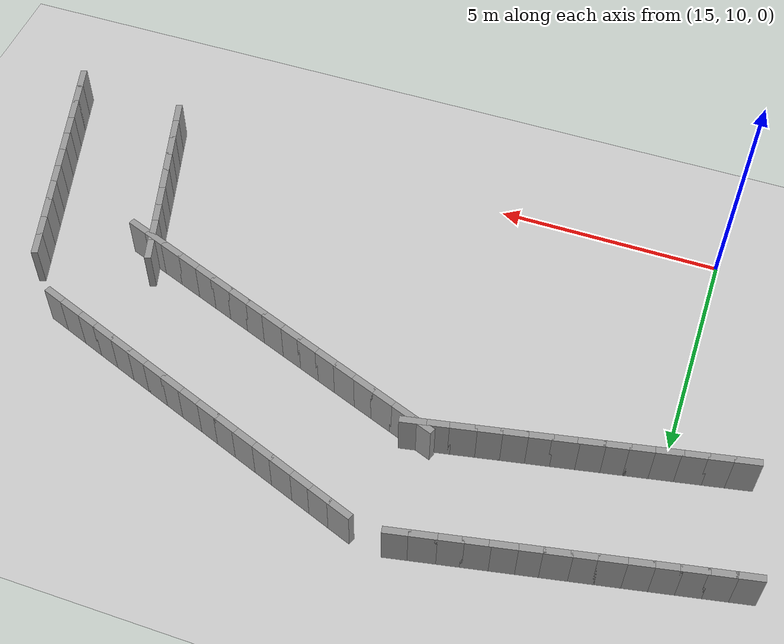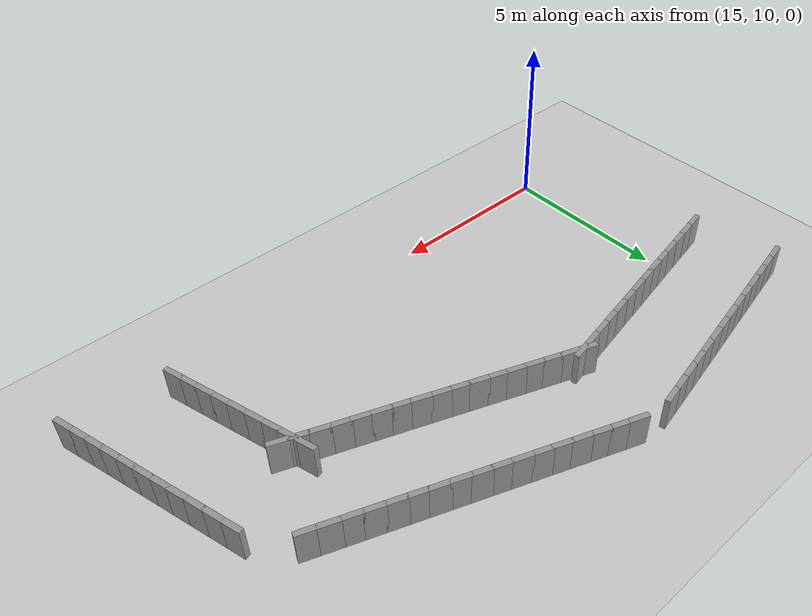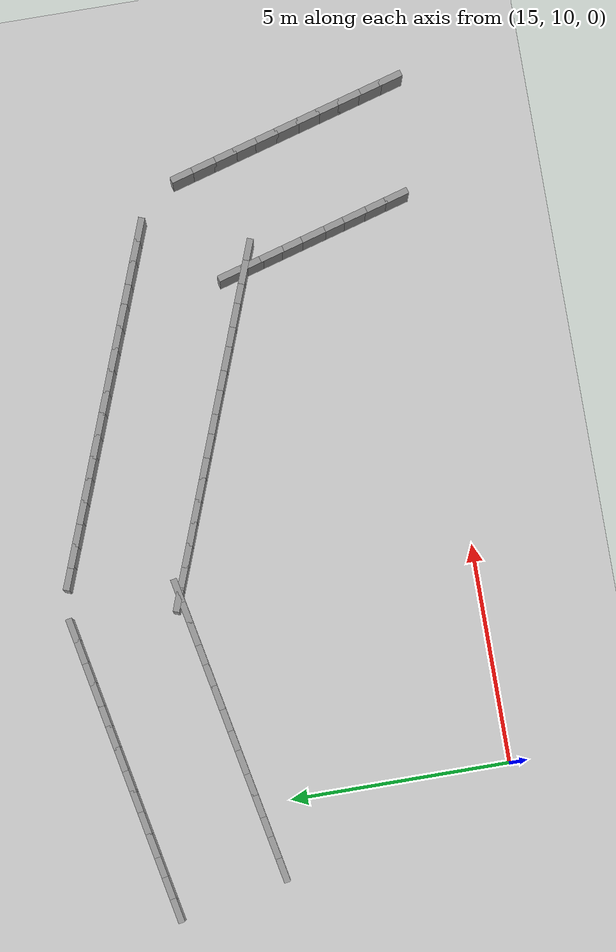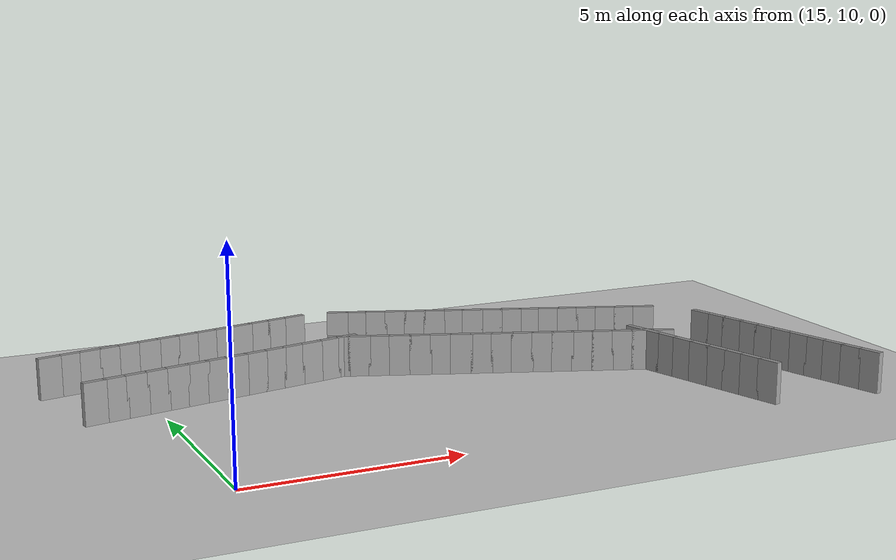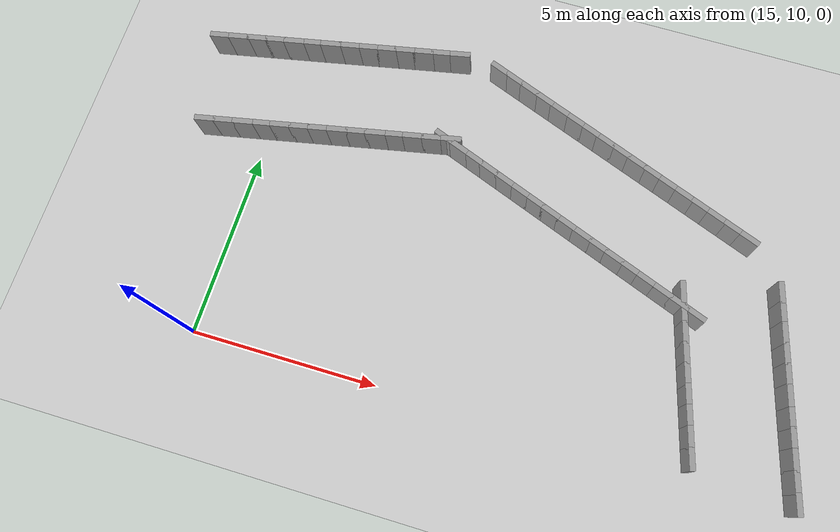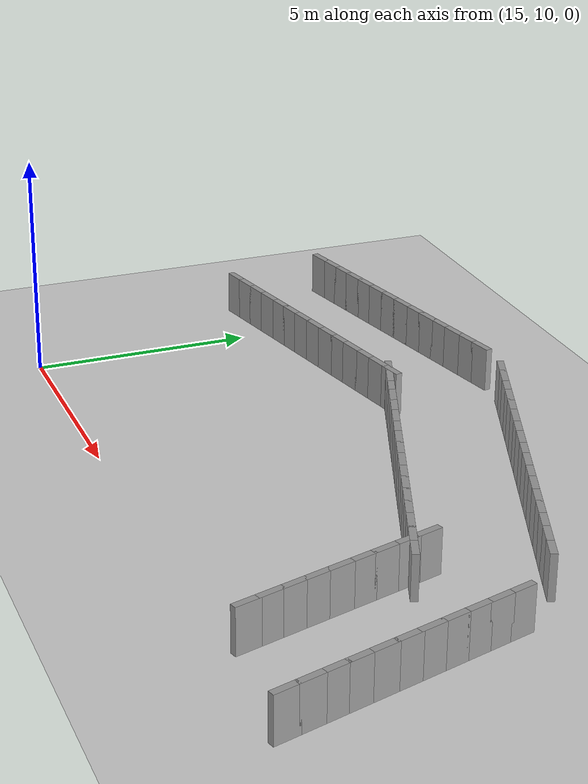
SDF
<sdf version="1.6">
 <world name="robot_harmonic_track">
  <include><uri>model://sun</uri></include>
  <include><uri>model://ground_plane</uri></include>
  <model name="wall_outer_68">
   <pose>30.701904934551028 10.09340140987173 0.5 0 0 1.8490959858000136</pose>
   <static>1</static>
   <link name="link">
    <collision name="collision">
     <geometry><box><size>0.5700078492343236 0.15 1.0</size></box></geometry>
    </collision>
    <visual name="visual">
     <geometry><box><size>0.5700078492343236 0.15 1.0</size></box></geometry>
     <material>
      <script><uri>file://media/materials/scripts/gazebo.material</uri><name>Gazebo/Grey</name></script>
     </material>
    </visual>
   </link>
  </model>
  <model name="wall_outer_69">
   <pose>30.559047791693885 10.59340140987172 0.5 0 0 1.8490959858000071</pose>
   <static>1</static>
   <link name="link">
    <collision name="collision">
     <geometry><box><size>0.5700078492343227 0.15 1.0</size></box></geometry>
    </collision>
    <visual name="visual">
     <geometry><box><size>0.5700078492343227 0.15 1.0</size></box></geometry>
     <material>
      <script><uri>file://media/materials/scripts/gazebo.material</uri><name>Gazebo/Grey</name></script>
     </material>
    </visual>
   </link>
  </model>
  <model name="wall_inner_70">
   <pose>28.012380779734684 10.40659859012828 0.5 0 0 1.8490959858000071</pose>
   <static>1</static>
   <link name="link">
    <collision name="collision">
     <geometry><box><size>0.5700078492343227 0.15 1.0</size></box></geometry>
    </collision>
    <visual name="visual">
     <geometry><box><size>0.5700078492343227 0.15 1.0</size></box></geometry>
     <material>
      <script><uri>file://media/materials/scripts/gazebo.material</uri><name>Gazebo/Grey</name></script>
     </material>
    </visual>
   </link>
  </model>
  <model name="wall_outer_70">
   <pose>30.416190648836746 11.09340140987172 0.5 0 0 1.8490959858000071</pose>
   <static>1</static>
   <link name="link">
    <collision name="collision">
     <geometry><box><size>0.5700078492343227 0.15 1.0</size></box></geometry>
    </collision>
    <visual name="visual">
     <geometry><box><size>0.5700078492343227 0.15 1.0</size></box></geometry>
     <material>
      <script><uri>file://media/materials/scripts/gazebo.material</uri><name>Gazebo/Grey</name></script>
     </material>
    </visual>
   </link>
  </model>
  <model name="wall_inner_71">
   <pose>27.86952363687754 10.90659859012828 0.5 0 0 1.8490959858000071</pose>
   <static>1</static>
   <link name="link">
    <collision name="collision">
     <geometry><box><size>0.5700078492343227 0.15 1.0</size></box></geometry>
    </collision>
    <visual name="visual">
     <geometry><box><size>0.5700078492343227 0.15 1.0</size></box></geometry>
     <material>
      <script><uri>file://media/materials/scripts/gazebo.material</uri><name>Gazebo/Grey</name></script>
     </material>
    </visual>
   </link>
  </model>
  <model name="wall_outer_71">
   <pose>30.2733335059796 11.59340140987172 0.5 0 0 1.8490959858000071</pose>
   <static>1</static>
   <link name="link">
    <collision name="collision">
     <geometry><box><size>0.5700078492343227 0.15 1.0</size></box></geometry>
    </collision>
    <visual name="visual">
     <geometry><box><size>0.5700078492343227 0.15 1.0</size></box></geometry>
     <material>
      <script><uri>file://media/materials/scripts/gazebo.material</uri><name>Gazebo/Grey</name></script>
     </material>
    </visual>
   </link>
  </model>
  <model name="wall_inner_72">
   <pose>27.7266664940204 11.40659859012828 0.5 0 0 1.8490959858000071</pose>
   <static>1</static>
   <link name="link">
    <collision name="collision">
     <geometry><box><size>0.5700078492343227 0.15 1.0</size></box></geometry>
    </collision>
    <visual name="visual">
     <geometry><box><size>0.5700078492343227 0.15 1.0</size></box></geometry>
     <material>
      <script><uri>file://media/materials/scripts/gazebo.material</uri><name>Gazebo/Grey</name></script>
     </material>
    </visual>
   </link>
  </model>
  <model name="wall_outer_72">
   <pose>30.13047636312246 12.09340140987172 0.5 0 0 1.8490959858000071</pose>
   <static>1</static>
   <link name="link">
    <collision name="collision">
     <geometry><box><size>0.5700078492343227 0.15 1.0</size></box></geometry>
    </collision>
    <visual name="visual">
     <geometry><box><size>0.5700078492343227 0.15 1.0</size></box></geometry>
     <material>
      <script><uri>file://media/materials/scripts/gazebo.material</uri><name>Gazebo/Grey</name></script>
     </material>
    </visual>
   </link>
  </model>
  <model name="wall_inner_73">
   <pose>27.583809351163254 11.90659859012828 0.5 0 0 1.8490959858000071</pose>
   <static>1</static>
   <link name="link">
    <collision name="collision">
     <geometry><box><size>0.5700078492343227 0.15 1.0</size></box></geometry>
    </collision>
    <visual name="visual">
     <geometry><box><size>0.5700078492343227 0.15 1.0</size></box></geometry>
     <material>
      <script><uri>file://media/materials/scripts/gazebo.material</uri><name>Gazebo/Grey</name></script>
     </material>
    </visual>
   </link>
  </model>
  <model name="wall_outer_73">
   <pose>29.987619220265316 12.59340140987172 0.5 0 0 1.8490959858000071</pose>
   <static>1</static>
   <link name="link">
    <collision name="collision">
     <geometry><box><size>0.5700078492343227 0.15 1.0</size></box></geometry>
    </collision>
    <visual name="visual">
     <geometry><box><size>0.5700078492343227 0.15 1.0</size></box></geometry>
     <material>
      <script><uri>file://media/materials/scripts/gazebo.material</uri><name>Gazebo/Grey</name></script>
     </material>
    </visual>
   </link>
  </model>
  <model name="wall_inner_74">
   <pose>27.440952208306115 12.40659859012828 0.5 0 0 1.8490959858000071</pose>
   <static>1</static>
   <link name="link">
    <collision name="collision">
     <geometry><box><size>0.5700078492343227 0.15 1.0</size></box></geometry>
    </collision>
    <visual name="visual">
     <geometry><box><size>0.5700078492343227 0.15 1.0</size></box></geometry>
     <material>
      <script><uri>file://media/materials/scripts/gazebo.material</uri><name>Gazebo/Grey</name></script>
     </material>
    </visual>
   </link>
  </model>
  <model name="wall_outer_74">
   <pose>29.844762077408177 13.09340140987172 0.5 0 0 1.8490959858000071</pose>
   <static>1</static>
   <link name="link">
    <collision name="collision">
     <geometry><box><size>0.5700078492343227 0.15 1.0</size></box></geometry>
    </collision>
    <visual name="visual">
     <geometry><box><size>0.5700078492343227 0.15 1.0</size></box></geometry>
     <material>
      <script><uri>file://media/materials/scripts/gazebo.material</uri><name>Gazebo/Grey</name></script>
     </material>
    </visual>
   </link>
  </model>
  <model name="wall_inner_75">
   <pose>27.298095065448972 12.90659859012827 0.5 0 0 1.8490959858000136</pose>
   <static>1</static>
   <link name="link">
    <collision name="collision">
     <geometry><box><size>0.5700078492343236 0.15 1.0</size></box></geometry>
    </collision>
    <visual name="visual">
     <geometry><box><size>0.5700078492343236 0.15 1.0</size></box></geometry>
     <material>
      <script><uri>file://media/materials/scripts/gazebo.material</uri><name>Gazebo/Grey</name></script>
     </material>
    </visual>
   </link>
  </model>
  <model name="wall_outer_75">
   <pose>29.701904934551028 13.59340140987173 0.5 0 0 1.8490959858000136</pose>
   <static>1</static>
   <link name="link">
    <collision name="collision">
     <geometry><box><size>0.5700078492343236 0.15 1.0</size></box></geometry>
    </collision>
    <visual name="visual">
     <geometry><box><size>0.5700078492343236 0.15 1.0</size></box></geometry>
     <material>
      <script><uri>file://media/materials/scripts/gazebo.material</uri><name>Gazebo/Grey</name></script>
     </material>
    </visual>
   </link>
  </model>
  <model name="wall_inner_76">
   <pose>27.155237922591823 13.40659859012828 0.5 0 0 1.8490959858000071</pose>
   <static>1</static>
   <link name="link">
    <collision name="collision">
     <geometry><box><size>0.5700078492343227 0.15 1.0</size></box></geometry>
    </collision>
    <visual name="visual">
     <geometry><box><size>0.5700078492343227 0.15 1.0</size></box></geometry>
     <material>
      <script><uri>file://media/materials/scripts/gazebo.material</uri><name>Gazebo/Grey</name></script>
     </material>
    </visual>
   </link>
  </model>
  <model name="wall_outer_76">
   <pose>29.559047791693885 14.09340140987172 0.5 0 0 1.8490959858000071</pose>
   <static>1</static>
   <link name="link">
    <collision name="collision">
     <geometry><box><size>0.5700078492343227 0.15 1.0</size></box></geometry>
    </collision>
    <visual name="visual">
     <geometry><box><size>0.5700078492343227 0.15 1.0</size></box></geometry>
     <material>
      <script><uri>file://media/materials/scripts/gazebo.material</uri><name>Gazebo/Grey</name></script>
     </material>
    </visual>
   </link>
  </model>
  <model name="wall_inner_77">
   <pose>27.012380779734684 13.90659859012828 0.5 0 0 1.8490959858000071</pose>
   <static>1</static>
   <link name="link">
    <collision name="collision">
     <geometry><box><size>0.5700078492343227 0.15 1.0</size></box></geometry>
    </collision>
    <visual name="visual">
     <geometry><box><size>0.5700078492343227 0.15 1.0</size></box></geometry>
     <material>
      <script><uri>file://media/materials/scripts/gazebo.material</uri><name>Gazebo/Grey</name></script>
     </material>
    </visual>
   </link>
  </model>
  <model name="wall_outer_77">
   <pose>29.416190648836746 14.59340140987172 0.5 0 0 1.8490959858000071</pose>
   <static>1</static>
   <link name="link">
    <collision name="collision">
     <geometry><box><size>0.5700078492343227 0.15 1.0</size></box></geometry>
    </collision>
    <visual name="visual">
     <geometry><box><size>0.5700078492343227 0.15 1.0</size></box></geometry>
     <material>
      <script><uri>file://media/materials/scripts/gazebo.material</uri><name>Gazebo/Grey</name></script>
     </material>
    </visual>
   </link>
  </model>
  <model name="wall_inner_78">
   <pose>26.86952363687754 14.40659859012828 0.5 0 0 1.8490959858000071</pose>
   <static>1</static>
   <link name="link">
    <collision name="collision">
     <geometry><box><size>0.5700078492343227 0.15 1.0</size></box></geometry>
    </collision>
    <visual name="visual">
     <geometry><box><size>0.5700078492343227 0.15 1.0</size></box></geometry>
     <material>
      <script><uri>file://media/materials/scripts/gazebo.material</uri><name>Gazebo/Grey</name></script>
     </material>
    </visual>
   </link>
  </model>
  <model name="wall_outer_78">
   <pose>29.2733335059796 15.09340140987172 0.5 0 0 1.8490959858000071</pose>
   <static>1</static>
   <link name="link">
    <collision name="collision">
     <geometry><box><size>0.5700078492343227 0.15 1.0</size></box></geometry>
    </collision>
    <visual name="visual">
     <geometry><box><size>0.5700078492343227 0.15 1.0</size></box></geometry>
     <material>
      <script><uri>file://media/materials/scripts/gazebo.material</uri><name>Gazebo/Grey</name></script>
     </material>
    </visual>
   </link>
  </model>
  <model name="wall_inner_79">
   <pose>27.325801580367454 13.917823822156342 0.5 0 0 2.782821983319221</pose>
   <static>1</static>
   <link name="link">
    <collision name="collision">
     <geometry><box><size>0.5525884556069118 0.15 1.0</size></box></geometry>
    </collision>
    <visual name="visual">
     <geometry><box><size>0.5525884556069118 0.15 1.0</size></box></geometry>
     <material>
      <script><uri>file://media/materials/scripts/gazebo.material</uri><name>Gazebo/Grey</name></script>
     </material>
    </visual>
   </link>
  </model>
  <model name="wall_outer_79">
   <pose>28.20361018433843 16.258646766078954 0.5 0 0 2.782821983319221</pose>
   <static>1</static>
   <link name="link">
    <collision name="collision">
     <geometry><box><size>0.5525884556069118 0.15 1.0</size></box></geometry>
    </collision>
    <visual name="visual">
     <geometry><box><size>0.5525884556069118 0.15 1.0</size></box></geometry>
     <material>
      <script><uri>file://media/materials/scripts/gazebo.material</uri><name>Gazebo/Grey</name></script>
     </material>
    </visual>
   </link>
  </model>
  <model name="wall_inner_80">
   <pose>26.855213345073334 14.094294410391637 0.5 0 0 2.78282198331922</pose>
   <static>1</static>
   <link name="link">
    <collision name="collision">
     <geometry><box><size>0.5525884556069158 0.15 1.0</size></box></geometry>
    </collision>
    <visual name="visual">
     <geometry><box><size>0.5525884556069158 0.15 1.0</size></box></geometry>
     <material>
      <script><uri>file://media/materials/scripts/gazebo.material</uri><name>Gazebo/Grey</name></script>
     </material>
    </visual>
   </link>
  </model>
  <model name="wall_outer_80">
   <pose>27.733021949044318 16.435117354314247 0.5 0 0 2.78282198331922</pose>
   <static>1</static>
   <link name="link">
    <collision name="collision">
     <geometry><box><size>0.5525884556069158 0.15 1.0</size></box></geometry>
    </collision>
    <visual name="visual">
     <geometry><box><size>0.5525884556069158 0.15 1.0</size></box></geometry>
     <material>
      <script><uri>file://media/materials/scripts/gazebo.material</uri><name>Gazebo/Grey</name></script>
     </material>
    </visual>
   </link>
  </model>
  <model name="wall_inner_81">
   <pose>26.38462510977922 14.27076499862693 0.5 0 0 2.782821983319221</pose>
   <static>1</static>
   <link name="link">
    <collision name="collision">
     <geometry><box><size>0.5525884556069118 0.15 1.0</size></box></geometry>
    </collision>
    <visual name="visual">
     <geometry><box><size>0.5525884556069118 0.15 1.0</size></box></geometry>
     <material>
      <script><uri>file://media/materials/scripts/gazebo.material</uri><name>Gazebo/Grey</name></script>
     </material>
    </visual>
   </link>
  </model>
  <model name="wall_outer_81">
   <pose>27.262433713750195 16.61158794254954 0.5 0 0 2.782821983319221</pose>
   <static>1</static>
   <link name="link">
    <collision name="collision">
     <geometry><box><size>0.5525884556069118 0.15 1.0</size></box></geometry>
    </collision>
    <visual name="visual">
     <geometry><box><size>0.5525884556069118 0.15 1.0</size></box></geometry>
     <material>
      <script><uri>file://media/materials/scripts/gazebo.material</uri><name>Gazebo/Grey</name></script>
     </material>
    </visual>
   </link>
  </model>
  <model name="wall_inner_82">
   <pose>25.9140368744851 14.447235586862222 0.5 0 0 2.7828219833192236</pose>
   <static>1</static>
   <link name="link">
    <collision name="collision">
     <geometry><box><size>0.5525884556069152 0.15 1.0</size></box></geometry>
    </collision>
    <visual name="visual">
     <geometry><box><size>0.5525884556069152 0.15 1.0</size></box></geometry>
     <material>
      <script><uri>file://media/materials/scripts/gazebo.material</uri><name>Gazebo/Grey</name></script>
     </material>
    </visual>
   </link>
  </model>
  <model name="wall_outer_82">
   <pose>26.791845478456075 16.788058530784834 0.5 0 0 2.7828219833192236</pose>
   <static>1</static>
   <link name="link">
    <collision name="collision">
     <geometry><box><size>0.5525884556069152 0.15 1.0</size></box></geometry>
    </collision>
    <visual name="visual">
     <geometry><box><size>0.5525884556069152 0.15 1.0</size></box></geometry>
     <material>
      <script><uri>file://media/materials/scripts/gazebo.material</uri><name>Gazebo/Grey</name></script>
     </material>
    </visual>
   </link>
  </model>
  <model name="wall_inner_83">
   <pose>25.44344863919098 14.623706175097517 0.5 0 0 2.782821983319218</pose>
   <static>1</static>
   <link name="link">
    <collision name="collision">
     <geometry><box><size>0.5525884556069125 0.15 1.0</size></box></geometry>
    </collision>
    <visual name="visual">
     <geometry><box><size>0.5525884556069125 0.15 1.0</size></box></geometry>
     <material>
      <script><uri>file://media/materials/scripts/gazebo.material</uri><name>Gazebo/Grey</name></script>
     </material>
    </visual>
   </link>
  </model>
  <model name="wall_outer_83">
   <pose>26.321257243161963 16.964529119020128 0.5 0 0 2.782821983319218</pose>
   <static>1</static>
   <link name="link">
    <collision name="collision">
     <geometry><box><size>0.5525884556069125 0.15 1.0</size></box></geometry>
    </collision>
    <visual name="visual">
     <geometry><box><size>0.5525884556069125 0.15 1.0</size></box></geometry>
     <material>
      <script><uri>file://media/materials/scripts/gazebo.material</uri><name>Gazebo/Grey</name></script>
     </material>
    </visual>
   </link>
  </model>
  <model name="wall_inner_84">
   <pose>24.972860403896867 14.80017676333281 0.5 0 0 2.7828219833192236</pose>
   <static>1</static>
   <link name="link">
    <collision name="collision">
     <geometry><box><size>0.5525884556069152 0.15 1.0</size></box></geometry>
    </collision>
    <visual name="visual">
     <geometry><box><size>0.5525884556069152 0.15 1.0</size></box></geometry>
     <material>
      <script><uri>file://media/materials/scripts/gazebo.material</uri><name>Gazebo/Grey</name></script>
     </material>
    </visual>
   </link>
  </model>
  <model name="wall_outer_84">
   <pose>25.850669007867843 17.140999707255425 0.5 0 0 2.7828219833192236</pose>
   <static>1</static>
   <link name="link">
    <collision name="collision">
     <geometry><box><size>0.5525884556069152 0.15 1.0</size></box></geometry>
    </collision>
    <visual name="visual">
     <geometry><box><size>0.5525884556069152 0.15 1.0</size></box></geometry>
     <material>
      <script><uri>file://media/materials/scripts/gazebo.material</uri><name>Gazebo/Grey</name></script>
     </material>
    </visual>
   </link>
  </model>
  <model name="wall_inner_85">
   <pose>24.502272168602747 14.976647351568108 0.5 0 0 2.782821983319221</pose>
   <static>1</static>
   <link name="link">
    <collision name="collision">
     <geometry><box><size>0.5525884556069118 0.15 1.0</size></box></geometry>
    </collision>
    <visual name="visual">
     <geometry><box><size>0.5525884556069118 0.15 1.0</size></box></geometry>
     <material>
      <script><uri>file://media/materials/scripts/gazebo.material</uri><name>Gazebo/Grey</name></script>
     </material>
    </visual>
   </link>
  </model>
  <model name="wall_outer_85">
   <pose>25.380080772573724 17.31747029549072 0.5 0 0 2.782821983319221</pose>
   <static>1</static>
   <link name="link">
    <collision name="collision">
     <geometry><box><size>0.5525884556069118 0.15 1.0</size></box></geometry>
    </collision>
    <visual name="visual">
     <geometry><box><size>0.5525884556069118 0.15 1.0</size></box></geometry>
     <material>
      <script><uri>file://media/materials/scripts/gazebo.material</uri><name>Gazebo/Grey</name></script>
     </material>
    </visual>
   </link>
  </model>
  <model name="wall_inner_86">
   <pose>24.031683933308628 15.153117939803396 0.5 0 0 2.7828219833192236</pose>
   <static>1</static>
   <link name="link">
    <collision name="collision">
     <geometry><box><size>0.5525884556069152 0.15 1.0</size></box></geometry>
    </collision>
    <visual name="visual">
     <geometry><box><size>0.5525884556069152 0.15 1.0</size></box></geometry>
     <material>
      <script><uri>file://media/materials/scripts/gazebo.material</uri><name>Gazebo/Grey</name></script>
     </material>
    </visual>
   </link>
  </model>
  <model name="wall_outer_86">
   <pose>24.909492537279604 17.493940883726008 0.5 0 0 2.7828219833192236</pose>
   <static>1</static>
   <link name="link">
    <collision name="collision">
     <geometry><box><size>0.5525884556069152 0.15 1.0</size></box></geometry>
    </collision>
    <visual name="visual">
     <geometry><box><size>0.5525884556069152 0.15 1.0</size></box></geometry>
     <material>
      <script><uri>file://media/materials/scripts/gazebo.material</uri><name>Gazebo/Grey</name></script>
     </material>
    </visual>
   </link>
  </model>
  <model name="wall_inner_87">
   <pose>23.5610956980145 15.329588528038698 0.5 0 0 2.7828219833192143</pose>
   <static>1</static>
   <link name="link">
    <collision name="collision">
     <geometry><box><size>0.552588455606913 0.15 1.0</size></box></geometry>
    </collision>
    <visual name="visual">
     <geometry><box><size>0.552588455606913 0.15 1.0</size></box></geometry>
     <material>
      <script><uri>file://media/materials/scripts/gazebo.material</uri><name>Gazebo/Grey</name></script>
     </material>
    </visual>
   </link>
  </model>
  <model name="wall_outer_87">
   <pose>24.4389043019855 17.6704114719613 0.5 0 0 2.7828219833192143</pose>
   <static>1</static>
   <link name="link">
    <collision name="collision">
     <geometry><box><size>0.552588455606913 0.15 1.0</size></box></geometry>
    </collision>
    <visual name="visual">
     <geometry><box><size>0.552588455606913 0.15 1.0</size></box></geometry>
     <material>
      <script><uri>file://media/materials/scripts/gazebo.material</uri><name>Gazebo/Grey</name></script>
     </material>
    </visual>
   </link>
  </model>
  <model name="wall_inner_88">
   <pose>23.090507462720396 15.50605911627399 0.5 0 0 2.7828219833192236</pose>
   <static>1</static>
   <link name="link">
    <collision name="collision">
     <geometry><box><size>0.5525884556069152 0.15 1.0</size></box></geometry>
    </collision>
    <visual name="visual">
     <geometry><box><size>0.5525884556069152 0.15 1.0</size></box></geometry>
     <material>
      <script><uri>file://media/materials/scripts/gazebo.material</uri><name>Gazebo/Grey</name></script>
     </material>
    </visual>
   </link>
  </model>
  <model name="wall_outer_88">
   <pose>23.968316066691372 17.846882060196602 0.5 0 0 2.7828219833192236</pose>
   <static>1</static>
   <link name="link">
    <collision name="collision">
     <geometry><box><size>0.5525884556069152 0.15 1.0</size></box></geometry>
    </collision>
    <visual name="visual">
     <geometry><box><size>0.5525884556069152 0.15 1.0</size></box></geometry>
     <material>
      <script><uri>file://media/materials/scripts/gazebo.material</uri><name>Gazebo/Grey</name></script>
     </material>
    </visual>
   </link>
  </model>
  <model name="wall_inner_89">
   <pose>22.619919227426276 15.682529704509282 0.5 0 0 2.782821983319221</pose>
   <static>1</static>
   <link name="link">
    <collision name="collision">
     <geometry><box><size>0.5525884556069118 0.15 1.0</size></box></geometry>
    </collision>
    <visual name="visual">
     <geometry><box><size>0.5525884556069118 0.15 1.0</size></box></geometry>
     <material>
      <script><uri>file://media/materials/scripts/gazebo.material</uri><name>Gazebo/Grey</name></script>
     </material>
    </visual>
   </link>
  </model>
  <model name="wall_outer_89">
   <pose>23.497727831397253 18.023352648431892 0.5 0 0 2.782821983319221</pose>
   <static>1</static>
   <link name="link">
    <collision name="collision">
     <geometry><box><size>0.5525884556069118 0.15 1.0</size></box></geometry>
    </collision>
    <visual name="visual">
     <geometry><box><size>0.5525884556069118 0.15 1.0</size></box></geometry>
     <material>
      <script><uri>file://media/materials/scripts/gazebo.material</uri><name>Gazebo/Grey</name></script>
     </material>
    </visual>
   </link>
  </model>
  <model name="wall_inner_90">
   <pose>22.149330992132157 15.859000292744577 0.5 0 0 2.7828219833192236</pose>
   <static>1</static>
   <link name="link">
    <collision name="collision">
     <geometry><box><size>0.5525884556069152 0.15 1.0</size></box></geometry>
    </collision>
    <visual name="visual">
     <geometry><box><size>0.5525884556069152 0.15 1.0</size></box></geometry>
     <material>
      <script><uri>file://media/materials/scripts/gazebo.material</uri><name>Gazebo/Grey</name></script>
     </material>
    </visual>
   </link>
  </model>
  <model name="wall_outer_90">
   <pose>23.027139596103133 18.19982323666719 0.5 0 0 2.7828219833192236</pose>
   <static>1</static>
   <link name="link">
    <collision name="collision">
     <geometry><box><size>0.5525884556069152 0.15 1.0</size></box></geometry>
    </collision>
    <visual name="visual">
     <geometry><box><size>0.5525884556069152 0.15 1.0</size></box></geometry>
     <material>
      <script><uri>file://media/materials/scripts/gazebo.material</uri><name>Gazebo/Grey</name></script>
     </material>
    </visual>
   </link>
  </model>
  <model name="wall_inner_91">
   <pose>21.67874275683804 16.03547088097987 0.5 0 0 2.782821983319221</pose>
   <static>1</static>
   <link name="link">
    <collision name="collision">
     <geometry><box><size>0.5525884556069118 0.15 1.0</size></box></geometry>
    </collision>
    <visual name="visual">
     <geometry><box><size>0.5525884556069118 0.15 1.0</size></box></geometry>
     <material>
      <script><uri>file://media/materials/scripts/gazebo.material</uri><name>Gazebo/Grey</name></script>
     </material>
    </visual>
   </link>
  </model>
  <model name="wall_outer_91">
   <pose>22.556551360809017 18.37629382490248 0.5 0 0 2.782821983319221</pose>
   <static>1</static>
   <link name="link">
    <collision name="collision">
     <geometry><box><size>0.5525884556069118 0.15 1.0</size></box></geometry>
    </collision>
    <visual name="visual">
     <geometry><box><size>0.5525884556069118 0.15 1.0</size></box></geometry>
     <material>
      <script><uri>file://media/materials/scripts/gazebo.material</uri><name>Gazebo/Grey</name></script>
     </material>
    </visual>
   </link>
  </model>
  <model name="wall_inner_92">
   <pose>21.208154521543925 16.211941469215166 0.5 0 0 2.782821983319221</pose>
   <static>1</static>
   <link name="link">
    <collision name="collision">
     <geometry><box><size>0.5525884556069118 0.15 1.0</size></box></geometry>
    </collision>
    <visual name="visual">
     <geometry><box><size>0.5525884556069118 0.15 1.0</size></box></geometry>
     <material>
      <script><uri>file://media/materials/scripts/gazebo.material</uri><name>Gazebo/Grey</name></script>
     </material>
    </visual>
   </link>
  </model>
  <model name="wall_outer_92">
   <pose>22.0859631255149 18.552764413137776 0.5 0 0 2.782821983319221</pose>
   <static>1</static>
   <link name="link">
    <collision name="collision">
     <geometry><box><size>0.5525884556069118 0.15 1.0</size></box></geometry>
    </collision>
    <visual name="visual">
     <geometry><box><size>0.5525884556069118 0.15 1.0</size></box></geometry>
     <material>
      <script><uri>file://media/materials/scripts/gazebo.material</uri><name>Gazebo/Grey</name></script>
     </material>
    </visual>
   </link>
  </model>
  <model name="wall_inner_93">
   <pose>20.737566286249802 16.38841205745046 0.5 0 0 2.782821983319217</pose>
   <static>1</static>
   <link name="link">
    <collision name="collision">
     <geometry><box><size>0.5525884556069165 0.15 1.0</size></box></geometry>
    </collision>
    <visual name="visual">
     <geometry><box><size>0.5525884556069165 0.15 1.0</size></box></geometry>
     <material>
      <script><uri>file://media/materials/scripts/gazebo.material</uri><name>Gazebo/Grey</name></script>
     </material>
    </visual>
   </link>
  </model>
  <model name="wall_outer_93">
   <pose>21.615374890220792 18.72923500137307 0.5 0 0 2.782821983319217</pose>
   <static>1</static>
   <link name="link">
    <collision name="collision">
     <geometry><box><size>0.5525884556069165 0.15 1.0</size></box></geometry>
    </collision>
    <visual name="visual">
     <geometry><box><size>0.5525884556069165 0.15 1.0</size></box></geometry>
     <material>
      <script><uri>file://media/materials/scripts/gazebo.material</uri><name>Gazebo/Grey</name></script>
     </material>
    </visual>
   </link>
  </model>
  <model name="wall_inner_94">
   <pose>20.266978050955686 16.564882645685753 0.5 0 0 2.7828219833192236</pose>
   <static>1</static>
   <link name="link">
    <collision name="collision">
     <geometry><box><size>0.5525884556069152 0.15 1.0</size></box></geometry>
    </collision>
    <visual name="visual">
     <geometry><box><size>0.5525884556069152 0.15 1.0</size></box></geometry>
     <material>
      <script><uri>file://media/materials/scripts/gazebo.material</uri><name>Gazebo/Grey</name></script>
     </material>
    </visual>
   </link>
  </model>
  <model name="wall_outer_94">
   <pose>21.144786654926662 18.905705589608363 0.5 0 0 2.7828219833192236</pose>
   <static>1</static>
   <link name="link">
    <collision name="collision">
     <geometry><box><size>0.5525884556069152 0.15 1.0</size></box></geometry>
    </collision>
    <visual name="visual">
     <geometry><box><size>0.5525884556069152 0.15 1.0</size></box></geometry>
     <material>
      <script><uri>file://media/materials/scripts/gazebo.material</uri><name>Gazebo/Grey</name></script>
     </material>
    </visual>
   </link>
  </model>
  <model name="wall_inner_95">
   <pose>19.79638981566157 16.74135323392105 0.5 0 0 2.782821983319221</pose>
   <static>1</static>
   <link name="link">
    <collision name="collision">
     <geometry><box><size>0.5525884556069118 0.15 1.0</size></box></geometry>
    </collision>
    <visual name="visual">
     <geometry><box><size>0.5525884556069118 0.15 1.0</size></box></geometry>
     <material>
      <script><uri>file://media/materials/scripts/gazebo.material</uri><name>Gazebo/Grey</name></script>
     </material>
    </visual>
   </link>
  </model>
  <model name="wall_outer_95">
   <pose>20.674198419632546 19.08217617784366 0.5 0 0 2.782821983319221</pose>
   <static>1</static>
   <link name="link">
    <collision name="collision">
     <geometry><box><size>0.5525884556069118 0.15 1.0</size></box></geometry>
    </collision>
    <visual name="visual">
     <geometry><box><size>0.5525884556069118 0.15 1.0</size></box></geometry>
     <material>
      <script><uri>file://media/materials/scripts/gazebo.material</uri><name>Gazebo/Grey</name></script>
     </material>
    </visual>
   </link>
  </model>
  <model name="wall_inner_96">
   <pose>19.995145168922733 16.72427415538635 0.5 0 0 -2.9441970937399096</pose>
   <static>1</static>
   <link name="link">
    <collision name="collision">
     <geometry><box><size>0.5599019513592788 0.15 1.0</size></box></geometry>
    </collision>
    <visual name="visual">
     <geometry><box><size>0.5599019513592788 0.15 1.0</size></box></geometry>
     <material>
      <script><uri>file://media/materials/scripts/gazebo.material</uri><name>Gazebo/Grey</name></script>
     </material>
    </visual>
   </link>
  </model>
  <model name="wall_outer_96">
   <pose>19.504854831077267 19.17572584461365 0.5 0 0 -2.9441970937399096</pose>
   <static>1</static>
   <link name="link">
    <collision name="collision">
     <geometry><box><size>0.5599019513592788 0.15 1.0</size></box></geometry>
    </collision>
    <visual name="visual">
     <geometry><box><size>0.5599019513592788 0.15 1.0</size></box></geometry>
     <material>
      <script><uri>file://media/materials/scripts/gazebo.material</uri><name>Gazebo/Grey</name></script>
     </material>
    </visual>
   </link>
  </model>
  <model name="wall_inner_97">
   <pose>19.495145168922726 16.62427415538635 0.5 0 0 -2.9441970937399167</pose>
   <static>1</static>
   <link name="link">
    <collision name="collision">
     <geometry><box><size>0.5599019513592781 0.15 1.0</size></box></geometry>
    </collision>
    <visual name="visual">
     <geometry><box><size>0.5599019513592781 0.15 1.0</size></box></geometry>
     <material>
      <script><uri>file://media/materials/scripts/gazebo.material</uri><name>Gazebo/Grey</name></script>
     </material>
    </visual>
   </link>
  </model>
  <model name="wall_outer_97">
   <pose>19.004854831077274 19.075725844613654 0.5 0 0 -2.9441970937399167</pose>
   <static>1</static>
   <link name="link">
    <collision name="collision">
     <geometry><box><size>0.5599019513592781 0.15 1.0</size></box></geometry>
    </collision>
    <visual name="visual">
     <geometry><box><size>0.5599019513592781 0.15 1.0</size></box></geometry>
     <material>
      <script><uri>file://media/materials/scripts/gazebo.material</uri><name>Gazebo/Grey</name></script>
     </material>
    </visual>
   </link>
  </model>
  <model name="wall_inner_98">
   <pose>18.995145168922733 16.52427415538635 0.5 0 0 -2.9441970937399096</pose>
   <static>1</static>
   <link name="link">
    <collision name="collision">
     <geometry><box><size>0.5599019513592788 0.15 1.0</size></box></geometry>
    </collision>
    <visual name="visual">
     <geometry><box><size>0.5599019513592788 0.15 1.0</size></box></geometry>
     <material>
      <script><uri>file://media/materials/scripts/gazebo.material</uri><name>Gazebo/Grey</name></script>
     </material>
    </visual>
   </link>
  </model>
  <model name="wall_outer_98">
   <pose>18.504854831077267 18.97572584461365 0.5 0 0 -2.9441970937399096</pose>
   <static>1</static>
   <link name="link">
    <collision name="collision">
     <geometry><box><size>0.5599019513592788 0.15 1.0</size></box></geometry>
    </collision>
    <visual name="visual">
     <geometry><box><size>0.5599019513592788 0.15 1.0</size></box></geometry>
     <material>
      <script><uri>file://media/materials/scripts/gazebo.material</uri><name>Gazebo/Grey</name></script>
     </material>
    </visual>
   </link>
  </model>
  <model name="wall_inner_99">
   <pose>18.495145168922726 16.424274155386346 0.5 0 0 -2.9441970937399167</pose>
   <static>1</static>
   <link name="link">
    <collision name="collision">
     <geometry><box><size>0.5599019513592781 0.15 1.0</size></box></geometry>
    </collision>
    <visual name="visual">
     <geometry><box><size>0.5599019513592781 0.15 1.0</size></box></geometry>
     <material>
      <script><uri>file://media/materials/scripts/gazebo.material</uri><name>Gazebo/Grey</name></script>
     </material>
    </visual>
   </link>
  </model>
  <model name="wall_outer_99">
   <pose>18.004854831077274 18.87572584461365 0.5 0 0 -2.9441970937399167</pose>
   <static>1</static>
   <link name="link">
    <collision name="collision">
     <geometry><box><size>0.5599019513592781 0.15 1.0</size></box></geometry>
    </collision>
    <visual name="visual">
     <geometry><box><size>0.5599019513592781 0.15 1.0</size></box></geometry>
     <material>
      <script><uri>file://media/materials/scripts/gazebo.material</uri><name>Gazebo/Grey</name></script>
     </material>
    </visual>
   </link>
  </model>
  <model name="wall_inner_100">
   <pose>17.995145168922733 16.32427415538635 0.5 0 0 -2.9441970937399096</pose>
   <static>1</static>
   <link name="link">
    <collision name="collision">
     <geometry><box><size>0.5599019513592788 0.15 1.0</size></box></geometry>
    </collision>
    <visual name="visual">
     <geometry><box><size>0.5599019513592788 0.15 1.0</size></box></geometry>
     <material>
      <script><uri>file://media/materials/scripts/gazebo.material</uri><name>Gazebo/Grey</name></script>
     </material>
    </visual>
   </link>
  </model>
  <model name="wall_outer_100">
   <pose>17.504854831077267 18.77572584461365 0.5 0 0 -2.9441970937399096</pose>
   <static>1</static>
   <link name="link">
    <collision name="collision">
     <geometry><box><size>0.5599019513592788 0.15 1.0</size></box></geometry>
    </collision>
    <visual name="visual">
     <geometry><box><size>0.5599019513592788 0.15 1.0</size></box></geometry>
     <material>
      <script><uri>file://media/materials/scripts/gazebo.material</uri><name>Gazebo/Grey</name></script>
     </material>
    </visual>
   </link>
  </model>
  <model name="wall_inner_101">
   <pose>17.495145168922733 16.22427415538635 0.5 0 0 -2.9441970937399096</pose>
   <static>1</static>
   <link name="link">
    <collision name="collision">
     <geometry><box><size>0.5599019513592788 0.15 1.0</size></box></geometry>
    </collision>
    <visual name="visual">
     <geometry><box><size>0.5599019513592788 0.15 1.0</size></box></geometry>
     <material>
      <script><uri>file://media/materials/scripts/gazebo.material</uri><name>Gazebo/Grey</name></script>
     </material>
    </visual>
   </link>
  </model>
  <model name="wall_outer_101">
   <pose>17.004854831077267 18.67572584461365 0.5 0 0 -2.9441970937399096</pose>
   <static>1</static>
   <link name="link">
    <collision name="collision">
     <geometry><box><size>0.5599019513592788 0.15 1.0</size></box></geometry>
    </collision>
    <visual name="visual">
     <geometry><box><size>0.5599019513592788 0.15 1.0</size></box></geometry>
     <material>
      <script><uri>file://media/materials/scripts/gazebo.material</uri><name>Gazebo/Grey</name></script>
     </material>
    </visual>
   </link>
  </model>
  <model name="wall_inner_102">
   <pose>16.995145168922726 16.12427415538635 0.5 0 0 -2.9441970937399167</pose>
   <static>1</static>
   <link name="link">
    <collision name="collision">
     <geometry><box><size>0.5599019513592781 0.15 1.0</size></box></geometry>
    </collision>
    <visual name="visual">
     <geometry><box><size>0.5599019513592781 0.15 1.0</size></box></geometry>
     <material>
      <script><uri>file://media/materials/scripts/gazebo.material</uri><name>Gazebo/Grey</name></script>
     </material>
    </visual>
   </link>
  </model>
  <model name="wall_outer_102">
   <pose>16.504854831077274 18.575725844613654 0.5 0 0 -2.9441970937399167</pose>
   <static>1</static>
   <link name="link">
    <collision name="collision">
     <geometry><box><size>0.5599019513592781 0.15 1.0</size></box></geometry>
    </collision>
    <visual name="visual">
     <geometry><box><size>0.5599019513592781 0.15 1.0</size></box></geometry>
     <material>
      <script><uri>file://media/materials/scripts/gazebo.material</uri><name>Gazebo/Grey</name></script>
     </material>
    </visual>
   </link>
  </model>
  <model name="wall_inner_103">
   <pose>16.495145168922733 16.02427415538635 0.5 0 0 -2.9441970937399096</pose>
   <static>1</static>
   <link name="link">
    <collision name="collision">
     <geometry><box><size>0.5599019513592788 0.15 1.0</size></box></geometry>
    </collision>
    <visual name="visual">
     <geometry><box><size>0.5599019513592788 0.15 1.0</size></box></geometry>
     <material>
      <script><uri>file://media/materials/scripts/gazebo.material</uri><name>Gazebo/Grey</name></script>
     </material>
    </visual>
   </link>
  </model>
  <model name="wall_outer_103">
   <pose>16.004854831077267 18.47572584461365 0.5 0 0 -2.9441970937399096</pose>
   <static>1</static>
   <link name="link">
    <collision name="collision">
     <geometry><box><size>0.5599019513592788 0.15 1.0</size></box></geometry>
    </collision>
    <visual name="visual">
     <geometry><box><size>0.5599019513592788 0.15 1.0</size></box></geometry>
     <material>
      <script><uri>file://media/materials/scripts/gazebo.material</uri><name>Gazebo/Grey</name></script>
     </material>
    </visual>
   </link>
  </model>
  <model name="wall_inner_104">
   <pose>15.995145168922726 15.924274155386348 0.5 0 0 -2.9441970937399167</pose>
   <static>1</static>
   <link name="link">
    <collision name="collision">
     <geometry><box><size>0.5599019513592781 0.15 1.0</size></box></geometry>
    </collision>
    <visual name="visual">
     <geometry><box><size>0.5599019513592781 0.15 1.0</size></box></geometry>
     <material>
      <script><uri>file://media/materials/scripts/gazebo.material</uri><name>Gazebo/Grey</name></script>
     </material>
    </visual>
   </link>
  </model>
  <model name="wall_outer_104">
   <pose>15.504854831077274 18.37572584461365 0.5 0 0 -2.9441970937399167</pose>
   <static>1</static>
   <link name="link">
    <collision name="collision">
     <geometry><box><size>0.5599019513592781 0.15 1.0</size></box></geometry>
    </collision>
    <visual name="visual">
     <geometry><box><size>0.5599019513592781 0.15 1.0</size></box></geometry>
     <material>
      <script><uri>file://media/materials/scripts/gazebo.material</uri><name>Gazebo/Grey</name></script>
     </material>
    </visual>
   </link>
  </model>
  <model name="wall_inner_105">
   <pose>15.495145168922734 15.824274155386352 0.5 0 0 -2.9441970937399096</pose>
   <static>1</static>
   <link name="link">
    <collision name="collision">
     <geometry><box><size>0.5599019513592788 0.15 1.0</size></box></geometry>
    </collision>
    <visual name="visual">
     <geometry><box><size>0.5599019513592788 0.15 1.0</size></box></geometry>
     <material>
      <script><uri>file://media/materials/scripts/gazebo.material</uri><name>Gazebo/Grey</name></script>
     </material>
    </visual>
   </link>
  </model>
  <model name="wall_outer_105">
   <pose>15.004854831077266 18.27572584461365 0.5 0 0 -2.9441970937399096</pose>
   <static>1</static>
   <link name="link">
    <collision name="collision">
     <geometry><box><size>0.5599019513592788 0.15 1.0</size></box></geometry>
    </collision>
    <visual name="visual">
     <geometry><box><size>0.5599019513592788 0.15 1.0</size></box></geometry>
     <material>
      <script><uri>file://media/materials/scripts/gazebo.material</uri><name>Gazebo/Grey</name></script>
     </material>
    </visual>
   </link>
  </model>
  <model name="wall_inner_106">
   <pose>14.995145168922734 15.72427415538635 0.5 0 0 -2.9441970937399096</pose>
   <static>1</static>
   <link name="link">
    <collision name="collision">
     <geometry><box><size>0.5599019513592788 0.15 1.0</size></box></geometry>
    </collision>
    <visual name="visual">
     <geometry><box><size>0.5599019513592788 0.15 1.0</size></box></geometry>
     <material>
      <script><uri>file://media/materials/scripts/gazebo.material</uri><name>Gazebo/Grey</name></script>
     </material>
    </visual>
   </link>
  </model>
  <model name="wall_outer_106">
   <pose>14.504854831077266 18.17572584461365 0.5 0 0 -2.9441970937399096</pose>
   <static>1</static>
   <link name="link">
    <collision name="collision">
     <geometry><box><size>0.5599019513592788 0.15 1.0</size></box></geometry>
    </collision>
    <visual name="visual">
     <geometry><box><size>0.5599019513592788 0.15 1.0</size></box></geometry>
     <material>
      <script><uri>file://media/materials/scripts/gazebo.material</uri><name>Gazebo/Grey</name></script>
     </material>
    </visual>
   </link>
  </model>
  <model name="wall_inner_107">
   <pose>14.495145168922726 15.62427415538635 0.5 0 0 -2.9441970937399167</pose>
   <static>1</static>
   <link name="link">
    <collision name="collision">
     <geometry><box><size>0.5599019513592781 0.15 1.0</size></box></geometry>
    </collision>
    <visual name="visual">
     <geometry><box><size>0.5599019513592781 0.15 1.0</size></box></geometry>
     <material>
      <script><uri>file://media/materials/scripts/gazebo.material</uri><name>Gazebo/Grey</name></script>
     </material>
    </visual>
   </link>
  </model>
  <model name="wall_outer_107">
   <pose>14.004854831077274 18.075725844613654 0.5 0 0 -2.9441970937399167</pose>
   <static>1</static>
   <link name="link">
    <collision name="collision">
     <geometry><box><size>0.5599019513592781 0.15 1.0</size></box></geometry>
    </collision>
    <visual name="visual">
     <geometry><box><size>0.5599019513592781 0.15 1.0</size></box></geometry>
     <material>
      <script><uri>file://media/materials/scripts/gazebo.material</uri><name>Gazebo/Grey</name></script>
     </material>
    </visual>
   </link>
  </model>
  <model name="wall_inner_108">
   <pose>13.995145168922734 15.524274155386351 0.5 0 0 -2.9441970937399096</pose>
   <static>1</static>
   <link name="link">
    <collision name="collision">
     <geometry><box><size>0.5599019513592788 0.15 1.0</size></box></geometry>
    </collision>
    <visual name="visual">
     <geometry><box><size>0.5599019513592788 0.15 1.0</size></box></geometry>
     <material>
      <script><uri>file://media/materials/scripts/gazebo.material</uri><name>Gazebo/Grey</name></script>
     </material>
    </visual>
   </link>
  </model>
  <model name="wall_outer_108">
   <pose>13.504854831077266 17.97572584461365 0.5 0 0 -2.9441970937399096</pose>
   <static>1</static>
   <link name="link">
    <collision name="collision">
     <geometry><box><size>0.5599019513592788 0.15 1.0</size></box></geometry>
    </collision>
    <visual name="visual">
     <geometry><box><size>0.5599019513592788 0.15 1.0</size></box></geometry>
     <material>
      <script><uri>file://media/materials/scripts/gazebo.material</uri><name>Gazebo/Grey</name></script>
     </material>
    </visual>
   </link>
  </model>
  <model name="wall_inner_109">
   <pose>13.495145168922726 15.424274155386348 0.5 0 0 -2.9441970937399167</pose>
   <static>1</static>
   <link name="link">
    <collision name="collision">
     <geometry><box><size>0.5599019513592781 0.15 1.0</size></box></geometry>
    </collision>
    <visual name="visual">
     <geometry><box><size>0.5599019513592781 0.15 1.0</size></box></geometry>
     <material>
      <script><uri>file://media/materials/scripts/gazebo.material</uri><name>Gazebo/Grey</name></script>
     </material>
    </visual>
   </link>
  </model>
  <model name="wall_outer_109">
   <pose>13.004854831077274 17.87572584461365 0.5 0 0 -2.9441970937399167</pose>
   <static>1</static>
   <link name="link">
    <collision name="collision">
     <geometry><box><size>0.5599019513592781 0.15 1.0</size></box></geometry>
    </collision>
    <visual name="visual">
     <geometry><box><size>0.5599019513592781 0.15 1.0</size></box></geometry>
     <material>
      <script><uri>file://media/materials/scripts/gazebo.material</uri><name>Gazebo/Grey</name></script>
     </material>
    </visual>
   </link>
  </model>
 </world>
</sdf>
